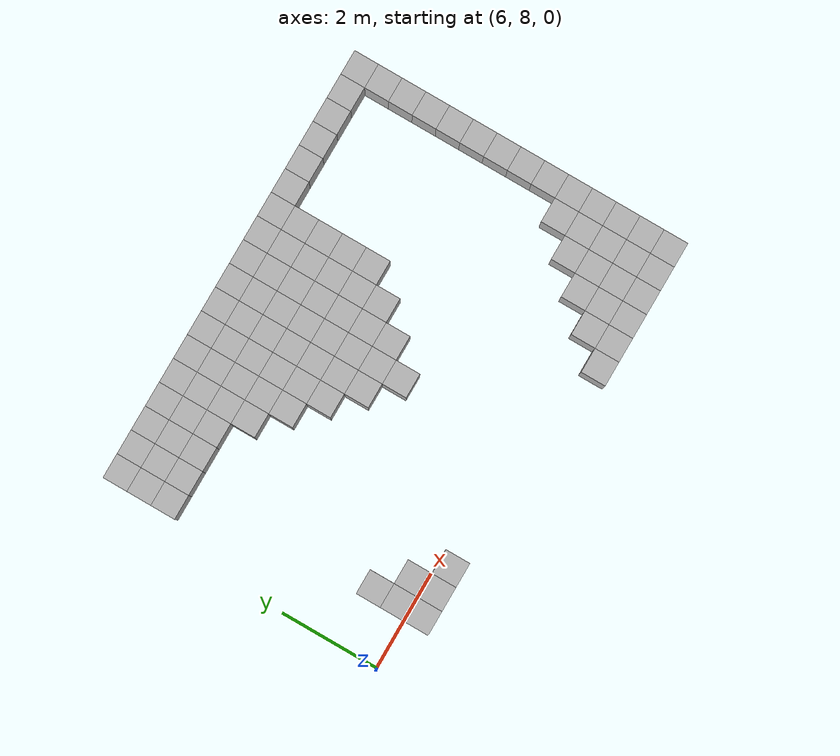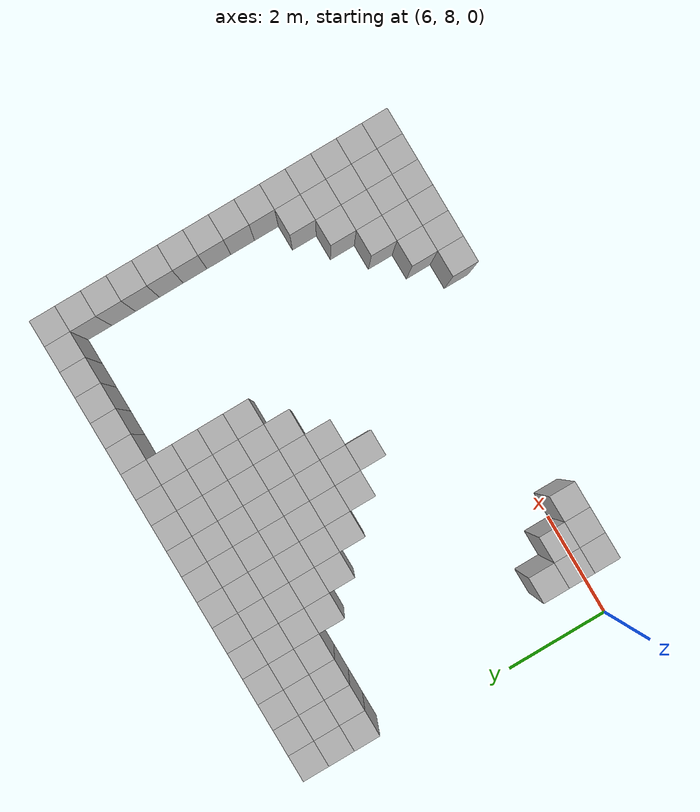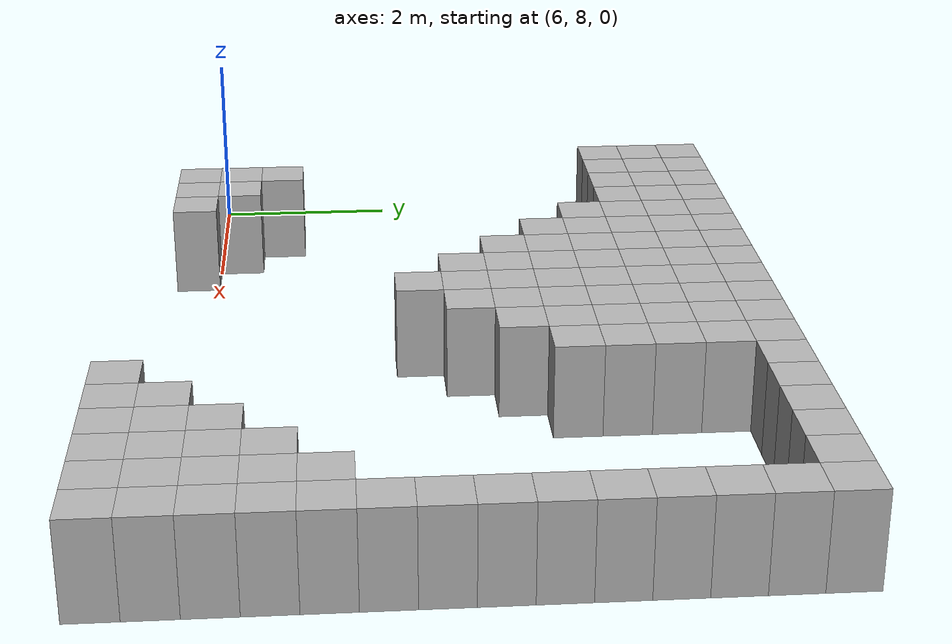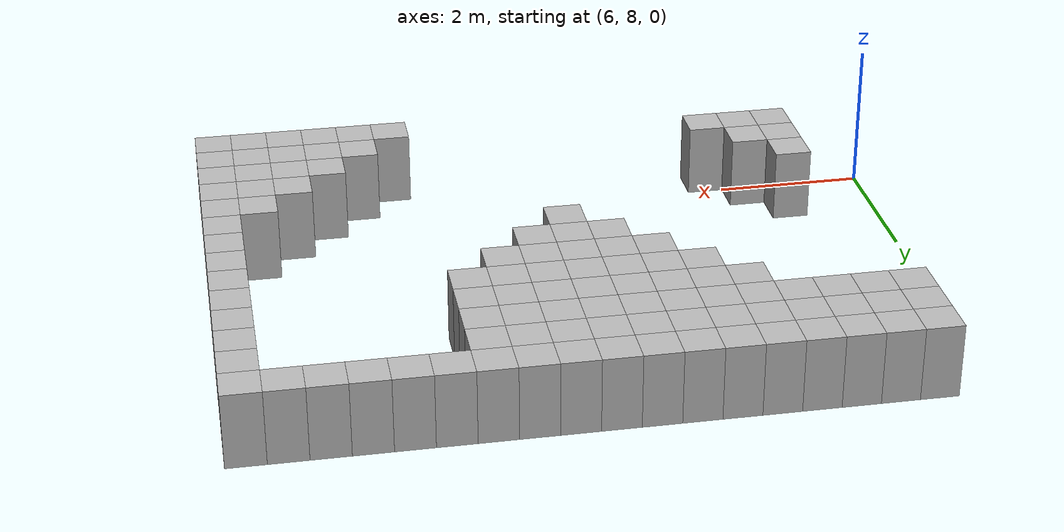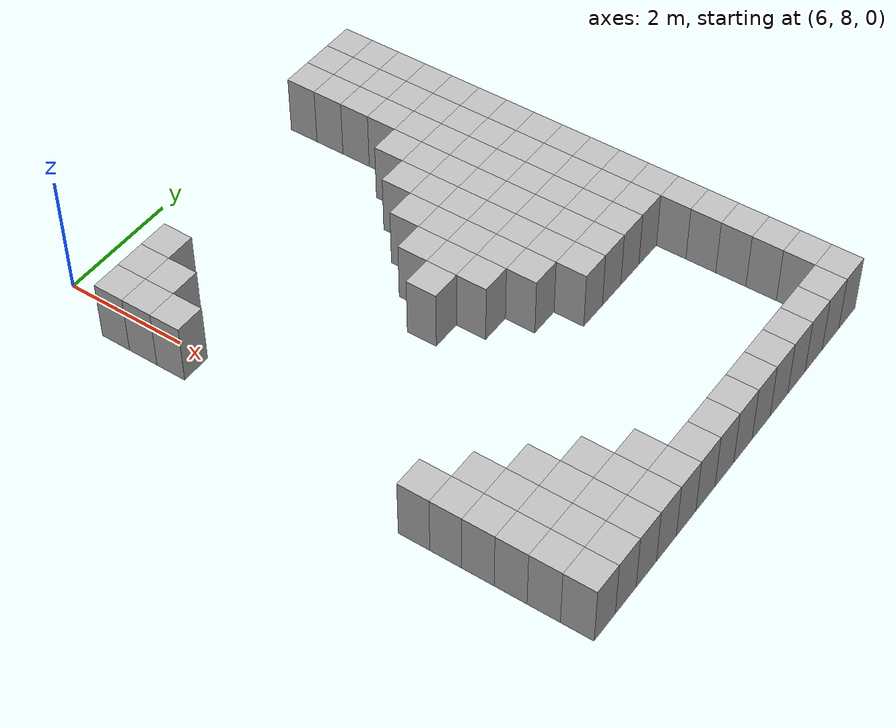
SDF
<sdf version="1.4">
 <world name="default">
  <model name="box_13_25">
   <pose>6.75 12.75 0.5 0 0 0</pose>
   <static>true</static>
   <link name="link">
    <collision name="collision"><geometry><box><size>0.5 0.5 1.0</size></box></geometry></collision>
    <visual name="visual"><geometry><box><size>0.5 0.5 1.0</size></box></geometry></visual>
   </link>
  </model>
  <model name="box_13_26">
   <pose>6.75 13.25 0.5 0 0 0</pose>
   <static>true</static>
   <link name="link">
    <collision name="collision"><geometry><box><size>0.5 0.5 1.0</size></box></geometry></collision>
    <visual name="visual"><geometry><box><size>0.5 0.5 1.0</size></box></geometry></visual>
   </link>
  </model>
  <model name="box_13_27">
   <pose>6.75 13.75 0.5 0 0 0</pose>
   <static>true</static>
   <link name="link">
    <collision name="collision"><geometry><box><size>0.5 0.5 1.0</size></box></geometry></collision>
    <visual name="visual"><geometry><box><size>0.5 0.5 1.0</size></box></geometry></visual>
   </link>
  </model>
  <model name="box_14_15">
   <pose>7.25 7.75 0.5 0 0 0</pose>
   <static>true</static>
   <link name="link">
    <collision name="collision"><geometry><box><size>0.5 0.5 1.0</size></box></geometry></collision>
    <visual name="visual"><geometry><box><size>0.5 0.5 1.0</size></box></geometry></visual>
   </link>
  </model>
  <model name="box_14_16">
   <pose>7.25 8.25 0.5 0 0 0</pose>
   <static>true</static>
   <link name="link">
    <collision name="collision"><geometry><box><size>0.5 0.5 1.0</size></box></geometry></collision>
    <visual name="visual"><geometry><box><size>0.5 0.5 1.0</size></box></geometry></visual>
   </link>
  </model>
  <model name="box_14_17">
   <pose>7.25 8.75 0.5 0 0 0</pose>
   <static>true</static>
   <link name="link">
    <collision name="collision"><geometry><box><size>0.5 0.5 1.0</size></box></geometry></collision>
    <visual name="visual"><geometry><box><size>0.5 0.5 1.0</size></box></geometry></visual>
   </link>
  </model>
  <model name="box_14_25">
   <pose>7.25 12.75 0.5 0 0 0</pose>
   <static>true</static>
   <link name="link">
    <collision name="collision"><geometry><box><size>0.5 0.5 1.0</size></box></geometry></collision>
    <visual name="visual"><geometry><box><size>0.5 0.5 1.0</size></box></geometry></visual>
   </link>
  </model>
  <model name="box_14_26">
   <pose>7.25 13.25 0.5 0 0 0</pose>
   <static>true</static>
   <link name="link">
    <collision name="collision"><geometry><box><size>0.5 0.5 1.0</size></box></geometry></collision>
    <visual name="visual"><geometry><box><size>0.5 0.5 1.0</size></box></geometry></visual>
   </link>
  </model>
  <model name="box_14_27">
   <pose>7.25 13.75 0.5 0 0 0</pose>
   <static>true</static>
   <link name="link">
    <collision name="collision"><geometry><box><size>0.5 0.5 1.0</size></box></geometry></collision>
    <visual name="visual"><geometry><box><size>0.5 0.5 1.0</size></box></geometry></visual>
   </link>
  </model>
  <model name="box_15_15">
   <pose>7.75 7.75 0.5 0 0 0</pose>
   <static>true</static>
   <link name="link">
    <collision name="collision"><geometry><box><size>0.5 0.5 1.0</size></box></geometry></collision>
    <visual name="visual"><geometry><box><size>0.5 0.5 1.0</size></box></geometry></visual>
   </link>
  </model>
  <model name="box_15_16">
   <pose>7.75 8.25 0.5 0 0 0</pose>
   <static>true</static>
   <link name="link">
    <collision name="collision"><geometry><box><size>0.5 0.5 1.0</size></box></geometry></collision>
    <visual name="visual"><geometry><box><size>0.5 0.5 1.0</size></box></geometry></visual>
   </link>
  </model>
  <model name="box_15_25">
   <pose>7.75 12.75 0.5 0 0 0</pose>
   <static>true</static>
   <link name="link">
    <collision name="collision"><geometry><box><size>0.5 0.5 1.0</size></box></geometry></collision>
    <visual name="visual"><geometry><box><size>0.5 0.5 1.0</size></box></geometry></visual>
   </link>
  </model>
  <model name="box_15_26">
   <pose>7.75 13.25 0.5 0 0 0</pose>
   <static>true</static>
   <link name="link">
    <collision name="collision"><geometry><box><size>0.5 0.5 1.0</size></box></geometry></collision>
    <visual name="visual"><geometry><box><size>0.5 0.5 1.0</size></box></geometry></visual>
   </link>
  </model>
  <model name="box_15_27">
   <pose>7.75 13.75 0.5 0 0 0</pose>
   <static>true</static>
   <link name="link">
    <collision name="collision"><geometry><box><size>0.5 0.5 1.0</size></box></geometry></collision>
    <visual name="visual"><geometry><box><size>0.5 0.5 1.0</size></box></geometry></visual>
   </link>
  </model>
  <model name="box_16_15">
   <pose>8.25 7.75 0.5 0 0 0</pose>
   <static>true</static>
   <link name="link">
    <collision name="collision"><geometry><box><size>0.5 0.5 1.0</size></box></geometry></collision>
    <visual name="visual"><geometry><box><size>0.5 0.5 1.0</size></box></geometry></visual>
   </link>
  </model>
  <model name="box_16_25">
   <pose>8.25 12.75 0.5 0 0 0</pose>
   <static>true</static>
   <link name="link">
    <collision name="collision"><geometry><box><size>0.5 0.5 1.0</size></box></geometry></collision>
    <visual name="visual"><geometry><box><size>0.5 0.5 1.0</size></box></geometry></visual>
   </link>
  </model>
  <model name="box_16_26">
   <pose>8.25 13.25 0.5 0 0 0</pose>
   <static>true</static>
   <link name="link">
    <collision name="collision"><geometry><box><size>0.5 0.5 1.0</size></box></geometry></collision>
    <visual name="visual"><geometry><box><size>0.5 0.5 1.0</size></box></geometry></visual>
   </link>
  </model>
  <model name="box_16_27">
   <pose>8.25 13.75 0.5 0 0 0</pose>
   <static>true</static>
   <link name="link">
    <collision name="collision"><geometry><box><size>0.5 0.5 1.0</size></box></geometry></collision>
    <visual name="visual"><geometry><box><size>0.5 0.5 1.0</size></box></geometry></visual>
   </link>
  </model>
  <model name="box_17_24">
   <pose>8.75 12.25 0.5 0 0 0</pose>
   <static>true</static>
   <link name="link">
    <collision name="collision"><geometry><box><size>0.5 0.5 1.0</size></box></geometry></collision>
    <visual name="visual"><geometry><box><size>0.5 0.5 1.0</size></box></geometry></visual>
   </link>
  </model>
  <model name="box_17_25">
   <pose>8.75 12.75 0.5 0 0 0</pose>
   <static>true</static>
   <link name="link">
    <collision name="collision"><geometry><box><size>0.5 0.5 1.0</size></box></geometry></collision>
    <visual name="visual"><geometry><box><size>0.5 0.5 1.0</size></box></geometry></visual>
   </link>
  </model>
  <model name="box_17_26">
   <pose>8.75 13.25 0.5 0 0 0</pose>
   <static>true</static>
   <link name="link">
    <collision name="collision"><geometry><box><size>0.5 0.5 1.0</size></box></geometry></collision>
    <visual name="visual"><geometry><box><size>0.5 0.5 1.0</size></box></geometry></visual>
   </link>
  </model>
  <model name="box_17_27">
   <pose>8.75 13.75 0.5 0 0 0</pose>
   <static>true</static>
   <link name="link">
    <collision name="collision"><geometry><box><size>0.5 0.5 1.0</size></box></geometry></collision>
    <visual name="visual"><geometry><box><size>0.5 0.5 1.0</size></box></geometry></visual>
   </link>
  </model>
  <model name="box_18_23">
   <pose>9.25 11.75 0.5 0 0 0</pose>
   <static>true</static>
   <link name="link">
    <collision name="collision"><geometry><box><size>0.5 0.5 1.0</size></box></geometry></collision>
    <visual name="visual"><geometry><box><size>0.5 0.5 1.0</size></box></geometry></visual>
   </link>
  </model>
  <model name="box_18_24">
   <pose>9.25 12.25 0.5 0 0 0</pose>
   <static>true</static>
   <link name="link">
    <collision name="collision"><geometry><box><size>0.5 0.5 1.0</size></box></geometry></collision>
    <visual name="visual"><geometry><box><size>0.5 0.5 1.0</size></box></geometry></visual>
   </link>
  </model>
  <model name="box_18_25">
   <pose>9.25 12.75 0.5 0 0 0</pose>
   <static>true</static>
   <link name="link">
    <collision name="collision"><geometry><box><size>0.5 0.5 1.0</size></box></geometry></collision>
    <visual name="visual"><geometry><box><size>0.5 0.5 1.0</size></box></geometry></visual>
   </link>
  </model>
  <model name="box_18_26">
   <pose>9.25 13.25 0.5 0 0 0</pose>
   <static>true</static>
   <link name="link">
    <collision name="collision"><geometry><box><size>0.5 0.5 1.0</size></box></geometry></collision>
    <visual name="visual"><geometry><box><size>0.5 0.5 1.0</size></box></geometry></visual>
   </link>
  </model>
  <model name="box_18_27">
   <pose>9.25 13.75 0.5 0 0 0</pose>
   <static>true</static>
   <link name="link">
    <collision name="collision"><geometry><box><size>0.5 0.5 1.0</size></box></geometry></collision>
    <visual name="visual"><geometry><box><size>0.5 0.5 1.0</size></box></geometry></visual>
   </link>
  </model>
  <model name="box_19_22">
   <pose>9.75 11.25 0.5 0 0 0</pose>
   <static>true</static>
   <link name="link">
    <collision name="collision"><geometry><box><size>0.5 0.5 1.0</size></box></geometry></collision>
    <visual name="visual"><geometry><box><size>0.5 0.5 1.0</size></box></geometry></visual>
   </link>
  </model>
  <model name="box_19_23">
   <pose>9.75 11.75 0.5 0 0 0</pose>
   <static>true</static>
   <link name="link">
    <collision name="collision"><geometry><box><size>0.5 0.5 1.0</size></box></geometry></collision>
    <visual name="visual"><geometry><box><size>0.5 0.5 1.0</size></box></geometry></visual>
   </link>
  </model>
  <model name="box_19_24">
   <pose>9.75 12.25 0.5 0 0 0</pose>
   <static>true</static>
   <link name="link">
    <collision name="collision"><geometry><box><size>0.5 0.5 1.0</size></box></geometry></collision>
    <visual name="visual"><geometry><box><size>0.5 0.5 1.0</size></box></geometry></visual>
   </link>
  </model>
  <model name="box_19_25">
   <pose>9.75 12.75 0.5 0 0 0</pose>
   <static>true</static>
   <link name="link">
    <collision name="collision"><geometry><box><size>0.5 0.5 1.0</size></box></geometry></collision>
    <visual name="visual"><geometry><box><size>0.5 0.5 1.0</size></box></geometry></visual>
   </link>
  </model>
  <model name="box_19_26">
   <pose>9.75 13.25 0.5 0 0 0</pose>
   <static>true</static>
   <link name="link">
    <collision name="collision"><geometry><box><size>0.5 0.5 1.0</size></box></geometry></collision>
    <visual name="visual"><geometry><box><size>0.5 0.5 1.0</size></box></geometry></visual>
   </link>
  </model>
  <model name="box_19_27">
   <pose>9.75 13.75 0.5 0 0 0</pose>
   <static>true</static>
   <link name="link">
    <collision name="collision"><geometry><box><size>0.5 0.5 1.0</size></box></geometry></collision>
    <visual name="visual"><geometry><box><size>0.5 0.5 1.0</size></box></geometry></visual>
   </link>
  </model>
  <model name="box_20_21">
   <pose>10.25 10.75 0.5 0 0 0</pose>
   <static>true</static>
   <link name="link">
    <collision name="collision"><geometry><box><size>0.5 0.5 1.0</size></box></geometry></collision>
    <visual name="visual"><geometry><box><size>0.5 0.5 1.0</size></box></geometry></visual>
   </link>
  </model>
  <model name="box_20_22">
   <pose>10.25 11.25 0.5 0 0 0</pose>
   <static>true</static>
   <link name="link">
    <collision name="collision"><geometry><box><size>0.5 0.5 1.0</size></box></geometry></collision>
    <visual name="visual"><geometry><box><size>0.5 0.5 1.0</size></box></geometry></visual>
   </link>
  </model>
  <model name="box_20_23">
   <pose>10.25 11.75 0.5 0 0 0</pose>
   <static>true</static>
   <link name="link">
    <collision name="collision"><geometry><box><size>0.5 0.5 1.0</size></box></geometry></collision>
    <visual name="visual"><geometry><box><size>0.5 0.5 1.0</size></box></geometry></visual>
   </link>
  </model>
  <model name="box_20_24">
   <pose>10.25 12.25 0.5 0 0 0</pose>
   <static>true</static>
   <link name="link">
    <collision name="collision"><geometry><box><size>0.5 0.5 1.0</size></box></geometry></collision>
    <visual name="visual"><geometry><box><size>0.5 0.5 1.0</size></box></geometry></visual>
   </link>
  </model>
  <model name="box_20_25">
   <pose>10.25 12.75 0.5 0 0 0</pose>
   <static>true</static>
   <link name="link">
    <collision name="collision"><geometry><box><size>0.5 0.5 1.0</size></box></geometry></collision>
    <visual name="visual"><geometry><box><size>0.5 0.5 1.0</size></box></geometry></visual>
   </link>
  </model>
  <model name="box_20_26">
   <pose>10.25 13.25 0.5 0 0 0</pose>
   <static>true</static>
   <link name="link">
    <collision name="collision"><geometry><box><size>0.5 0.5 1.0</size></box></geometry></collision>
    <visual name="visual"><geometry><box><size>0.5 0.5 1.0</size></box></geometry></visual>
   </link>
  </model>
  <model name="box_20_27">
   <pose>10.25 13.75 0.5 0 0 0</pose>
   <static>true</static>
   <link name="link">
    <collision name="collision"><geometry><box><size>0.5 0.5 1.0</size></box></geometry></collision>
    <visual name="visual"><geometry><box><size>0.5 0.5 1.0</size></box></geometry></visual>
   </link>
  </model>
  <model name="box_21_20">
   <pose>10.75 10.25 0.5 0 0 0</pose>
   <static>true</static>
   <link name="link">
    <collision name="collision"><geometry><box><size>0.5 0.5 1.0</size></box></geometry></collision>
    <visual name="visual"><geometry><box><size>0.5 0.5 1.0</size></box></geometry></visual>
   </link>
  </model>
  <model name="box_21_21">
   <pose>10.75 10.75 0.5 0 0 0</pose>
   <static>true</static>
   <link name="link">
    <collision name="collision"><geometry><box><size>0.5 0.5 1.0</size></box></geometry></collision>
    <visual name="visual"><geometry><box><size>0.5 0.5 1.0</size></box></geometry></visual>
   </link>
  </model>
  <model name="box_21_22">
   <pose>10.75 11.25 0.5 0 0 0</pose>
   <static>true</static>
   <link name="link">
    <collision name="collision"><geometry><box><size>0.5 0.5 1.0</size></box></geometry></collision>
    <visual name="visual"><geometry><box><size>0.5 0.5 1.0</size></box></geometry></visual>
   </link>
  </model>
  <model name="box_21_23">
   <pose>10.75 11.75 0.5 0 0 0</pose>
   <static>true</static>
   <link name="link">
    <collision name="collision"><geometry><box><size>0.5 0.5 1.0</size></box></geometry></collision>
    <visual name="visual"><geometry><box><size>0.5 0.5 1.0</size></box></geometry></visual>
   </link>
  </model>
  <model name="box_21_24">
   <pose>10.75 12.25 0.5 0 0 0</pose>
   <static>true</static>
   <link name="link">
    <collision name="collision"><geometry><box><size>0.5 0.5 1.0</size></box></geometry></collision>
    <visual name="visual"><geometry><box><size>0.5 0.5 1.0</size></box></geometry></visual>
   </link>
  </model>
  <model name="box_21_25">
   <pose>10.75 12.75 0.5 0 0 0</pose>
   <static>true</static>
   <link name="link">
    <collision name="collision"><geometry><box><size>0.5 0.5 1.0</size></box></geometry></collision>
    <visual name="visual"><geometry><box><size>0.5 0.5 1.0</size></box></geometry></visual>
   </link>
  </model>
  <model name="box_21_26">
   <pose>10.75 13.25 0.5 0 0 0</pose>
   <static>true</static>
   <link name="link">
    <collision name="collision"><geometry><box><size>0.5 0.5 1.0</size></box></geometry></collision>
    <visual name="visual"><geometry><box><size>0.5 0.5 1.0</size></box></geometry></visual>
   </link>
  </model>
  <model name="box_21_27">
   <pose>10.75 13.75 0.5 0 0 0</pose>
   <static>true</static>
   <link name="link">
    <collision name="collision"><geometry><box><size>0.5 0.5 1.0</size></box></geometry></collision>
    <visual name="visual"><geometry><box><size>0.5 0.5 1.0</size></box></geometry></visual>
   </link>
  </model>
  <model name="box_22_21">
   <pose>11.25 10.75 0.5 0 0 0</pose>
   <static>true</static>
   <link name="link">
    <collision name="collision"><geometry><box><size>0.5 0.5 1.0</size></box></geometry></collision>
    <visual name="visual"><geometry><box><size>0.5 0.5 1.0</size></box></geometry></visual>
   </link>
  </model>
  <model name="box_22_22">
   <pose>11.25 11.25 0.5 0 0 0</pose>
   <static>true</static>
   <link name="link">
    <collision name="collision"><geometry><box><size>0.5 0.5 1.0</size></box></geometry></collision>
    <visual name="visual"><geometry><box><size>0.5 0.5 1.0</size></box></geometry></visual>
   </link>
  </model>
  <model name="box_22_23">
   <pose>11.25 11.75 0.5 0 0 0</pose>
   <static>true</static>
   <link name="link">
    <collision name="collision"><geometry><box><size>0.5 0.5 1.0</size></box></geometry></collision>
    <visual name="visual"><geometry><box><size>0.5 0.5 1.0</size></box></geometry></visual>
   </link>
  </model>
  <model name="box_22_24">
   <pose>11.25 12.25 0.5 0 0 0</pose>
   <static>true</static>
   <link name="link">
    <collision name="collision"><geometry><box><size>0.5 0.5 1.0</size></box></geometry></collision>
    <visual name="visual"><geometry><box><size>0.5 0.5 1.0</size></box></geometry></visual>
   </link>
  </model>
  <model name="box_22_25">
   <pose>11.25 12.75 0.5 0 0 0</pose>
   <static>true</static>
   <link name="link">
    <collision name="collision"><geometry><box><size>0.5 0.5 1.0</size></box></geometry></collision>
    <visual name="visual"><geometry><box><size>0.5 0.5 1.0</size></box></geometry></visual>
   </link>
  </model>
  <model name="box_22_26">
   <pose>11.25 13.25 0.5 0 0 0</pose>
   <static>true</static>
   <link name="link">
    <collision name="collision"><geometry><box><size>0.5 0.5 1.0</size></box></geometry></collision>
    <visual name="visual"><geometry><box><size>0.5 0.5 1.0</size></box></geometry></visual>
   </link>
  </model>
  <model name="box_22_27">
   <pose>11.25 13.75 0.5 0 0 0</pose>
   <static>true</static>
   <link name="link">
    <collision name="collision"><geometry><box><size>0.5 0.5 1.0</size></box></geometry></collision>
    <visual name="visual"><geometry><box><size>0.5 0.5 1.0</size></box></geometry></visual>
   </link>
  </model>
  <model name="box_23_22">
   <pose>11.75 11.25 0.5 0 0 0</pose>
   <static>true</static>
   <link name="link">
    <collision name="collision"><geometry><box><size>0.5 0.5 1.0</size></box></geometry></collision>
    <visual name="visual"><geometry><box><size>0.5 0.5 1.0</size></box></geometry></visual>
   </link>
  </model>
  <model name="box_23_23">
   <pose>11.75 11.75 0.5 0 0 0</pose>
   <static>true</static>
   <link name="link">
    <collision name="collision"><geometry><box><size>0.5 0.5 1.0</size></box></geometry></collision>
    <visual name="visual"><geometry><box><size>0.5 0.5 1.0</size></box></geometry></visual>
   </link>
  </model>
  <model name="box_23_24">
   <pose>11.75 12.25 0.5 0 0 0</pose>
   <static>true</static>
   <link name="link">
    <collision name="collision"><geometry><box><size>0.5 0.5 1.0</size></box></geometry></collision>
    <visual name="visual"><geometry><box><size>0.5 0.5 1.0</size></box></geometry></visual>
   </link>
  </model>
  <model name="box_23_25">
   <pose>11.75 12.75 0.5 0 0 0</pose>
   <static>true</static>
   <link name="link">
    <collision name="collision"><geometry><box><size>0.5 0.5 1.0</size></box></geometry></collision>
    <visual name="visual"><geometry><box><size>0.5 0.5 1.0</size></box></geometry></visual>
   </link>
  </model>
  <model name="box_23_26">
   <pose>11.75 13.25 0.5 0 0 0</pose>
   <static>true</static>
   <link name="link">
    <collision name="collision"><geometry><box><size>0.5 0.5 1.0</size></box></geometry></collision>
    <visual name="visual"><geometry><box><size>0.5 0.5 1.0</size></box></geometry></visual>
   </link>
  </model>
  <model name="box_23_27">
   <pose>11.75 13.75 0.5 0 0 0</pose>
   <static>true</static>
   <link name="link">
    <collision name="collision"><geometry><box><size>0.5 0.5 1.0</size></box></geometry></collision>
    <visual name="visual"><geometry><box><size>0.5 0.5 1.0</size></box></geometry></visual>
   </link>
  </model>
  <model name="box_24_23">
   <pose>12.25 11.75 0.5 0 0 0</pose>
   <static>true</static>
   <link name="link">
    <collision name="collision"><geometry><box><size>0.5 0.5 1.0</size></box></geometry></collision>
    <visual name="visual"><geometry><box><size>0.5 0.5 1.0</size></box></geometry></visual>
   </link>
  </model>
  <model name="box_24_24">
   <pose>12.25 12.25 0.5 0 0 0</pose>
   <static>true</static>
   <link name="link">
    <collision name="collision"><geometry><box><size>0.5 0.5 1.0</size></box></geometry></collision>
    <visual name="visual"><geometry><box><size>0.5 0.5 1.0</size></box></geometry></visual>
   </link>
  </model>
  <model name="box_24_25">
   <pose>12.25 12.75 0.5 0 0 0</pose>
   <static>true</static>
   <link name="link">
    <collision name="collision"><geometry><box><size>0.5 0.5 1.0</size></box></geometry></collision>
    <visual name="visual"><geometry><box><size>0.5 0.5 1.0</size></box></geometry></visual>
   </link>
  </model>
  <model name="box_24_26">
   <pose>12.25 13.25 0.5 0 0 0</pose>
   <static>true</static>
   <link name="link">
    <collision name="collision"><geometry><box><size>0.5 0.5 1.0</size></box></geometry></collision>
    <visual name="visual"><geometry><box><size>0.5 0.5 1.0</size></box></geometry></visual>
   </link>
  </model>
  <model name="box_24_27">
   <pose>12.25 13.75 0.5 0 0 0</pose>
   <static>true</static>
   <link name="link">
    <collision name="collision"><geometry><box><size>0.5 0.5 1.0</size></box></geometry></collision>
    <visual name="visual"><geometry><box><size>0.5 0.5 1.0</size></box></geometry></visual>
   </link>
  </model>
  <model name="box_25_14">
   <pose>12.75 7.25 0.5 0 0 0</pose>
   <static>true</static>
   <link name="link">
    <collision name="collision"><geometry><box><size>0.5 0.5 1.0</size></box></geometry></collision>
    <visual name="visual"><geometry><box><size>0.5 0.5 1.0</size></box></geometry></visual>
   </link>
  </model>
  <model name="box_25_27">
   <pose>12.75 13.75 0.5 0 0 0</pose>
   <static>true</static>
   <link name="link">
    <collision name="collision"><geometry><box><size>0.5 0.5 1.0</size></box></geometry></collision>
    <visual name="visual"><geometry><box><size>0.5 0.5 1.0</size></box></geometry></visual>
   </link>
  </model>
  <model name="box_26_14">
   <pose>13.25 7.25 0.5 0 0 0</pose>
   <static>true</static>
   <link name="link">
    <collision name="collision"><geometry><box><size>0.5 0.5 1.0</size></box></geometry></collision>
    <visual name="visual"><geometry><box><size>0.5 0.5 1.0</size></box></geometry></visual>
   </link>
  </model>
  <model name="box_26_15">
   <pose>13.25 7.75 0.5 0 0 0</pose>
   <static>true</static>
   <link name="link">
    <collision name="collision"><geometry><box><size>0.5 0.5 1.0</size></box></geometry></collision>
    <visual name="visual"><geometry><box><size>0.5 0.5 1.0</size></box></geometry></visual>
   </link>
  </model>
  <model name="box_26_27">
   <pose>13.25 13.75 0.5 0 0 0</pose>
   <static>true</static>
   <link name="link">
    <collision name="collision"><geometry><box><size>0.5 0.5 1.0</size></box></geometry></collision>
    <visual name="visual"><geometry><box><size>0.5 0.5 1.0</size></box></geometry></visual>
   </link>
  </model>
  <model name="box_27_14">
   <pose>13.75 7.25 0.5 0 0 0</pose>
   <static>true</static>
   <link name="link">
    <collision name="collision"><geometry><box><size>0.5 0.5 1.0</size></box></geometry></collision>
    <visual name="visual"><geometry><box><size>0.5 0.5 1.0</size></box></geometry></visual>
   </link>
  </model>
  <model name="box_27_15">
   <pose>13.75 7.75 0.5 0 0 0</pose>
   <static>true</static>
   <link name="link">
    <collision name="collision"><geometry><box><size>0.5 0.5 1.0</size></box></geometry></collision>
    <visual name="visual"><geometry><box><size>0.5 0.5 1.0</size></box></geometry></visual>
   </link>
  </model>
  <model name="box_27_16">
   <pose>13.75 8.25 0.5 0 0 0</pose>
   <static>true</static>
   <link name="link">
    <collision name="collision"><geometry><box><size>0.5 0.5 1.0</size></box></geometry></collision>
    <visual name="visual"><geometry><box><size>0.5 0.5 1.0</size></box></geometry></visual>
   </link>
  </model>
  <model name="box_27_27">
   <pose>13.75 13.75 0.5 0 0 0</pose>
   <static>true</static>
   <link name="link">
    <collision name="collision"><geometry><box><size>0.5 0.5 1.0</size></box></geometry></collision>
    <visual name="visual"><geometry><box><size>0.5 0.5 1.0</size></box></geometry></visual>
   </link>
  </model>
  <model name="box_28_14">
   <pose>14.25 7.25 0.5 0 0 0</pose>
   <static>true</static>
   <link name="link">
    <collision name="collision"><geometry><box><size>0.5 0.5 1.0</size></box></geometry></collision>
    <visual name="visual"><geometry><box><size>0.5 0.5 1.0</size></box></geometry></visual>
   </link>
  </model>
  <model name="box_28_15">
   <pose>14.25 7.75 0.5 0 0 0</pose>
   <static>true</static>
   <link name="link">
    <collision name="collision"><geometry><box><size>0.5 0.5 1.0</size></box></geometry></collision>
    <visual name="visual"><geometry><box><size>0.5 0.5 1.0</size></box></geometry></visual>
   </link>
  </model>
  <model name="box_28_16">
   <pose>14.25 8.25 0.5 0 0 0</pose>
   <static>true</static>
   <link name="link">
    <collision name="collision"><geometry><box><size>0.5 0.5 1.0</size></box></geometry></collision>
    <visual name="visual"><geometry><box><size>0.5 0.5 1.0</size></box></geometry></visual>
   </link>
  </model>
  <model name="box_28_17">
   <pose>14.25 8.75 0.5 0 0 0</pose>
   <static>true</static>
   <link name="link">
    <collision name="collision"><geometry><box><size>0.5 0.5 1.0</size></box></geometry></collision>
    <visual name="visual"><geometry><box><size>0.5 0.5 1.0</size></box></geometry></visual>
   </link>
  </model>
  <model name="box_28_27">
   <pose>14.25 13.75 0.5 0 0 0</pose>
   <static>true</static>
   <link name="link">
    <collision name="collision"><geometry><box><size>0.5 0.5 1.0</size></box></geometry></collision>
    <visual name="visual"><geometry><box><size>0.5 0.5 1.0</size></box></geometry></visual>
   </link>
  </model>
  <model name="box_29_14">
   <pose>14.75 7.25 0.5 0 0 0</pose>
   <static>true</static>
   <link name="link">
    <collision name="collision"><geometry><box><size>0.5 0.5 1.0</size></box></geometry></collision>
    <visual name="visual"><geometry><box><size>0.5 0.5 1.0</size></box></geometry></visual>
   </link>
  </model>
  <model name="box_29_15">
   <pose>14.75 7.75 0.5 0 0 0</pose>
   <static>true</static>
   <link name="link">
    <collision name="collision"><geometry><box><size>0.5 0.5 1.0</size></box></geometry></collision>
    <visual name="visual"><geometry><box><size>0.5 0.5 1.0</size></box></geometry></visual>
   </link>
  </model>
  <model name="box_29_16">
   <pose>14.75 8.25 0.5 0 0 0</pose>
   <static>true</static>
   <link name="link">
    <collision name="collision"><geometry><box><size>0.5 0.5 1.0</size></box></geometry></collision>
    <visual name="visual"><geometry><box><size>0.5 0.5 1.0</size></box></geometry></visual>
   </link>
  </model>
  <model name="box_29_17">
   <pose>14.75 8.75 0.5 0 0 0</pose>
   <static>true</static>
   <link name="link">
    <collision name="collision"><geometry><box><size>0.5 0.5 1.0</size></box></geometry></collision>
    <visual name="visual"><geometry><box><size>0.5 0.5 1.0</size></box></geometry></visual>
   </link>
  </model>
  <model name="box_29_18">
   <pose>14.75 9.25 0.5 0 0 0</pose>
   <static>true</static>
   <link name="link">
    <collision name="collision"><geometry><box><size>0.5 0.5 1.0</size></box></geometry></collision>
    <visual name="visual"><geometry><box><size>0.5 0.5 1.0</size></box></geometry></visual>
   </link>
  </model>
  <model name="box_29_27">
   <pose>14.75 13.75 0.5 0 0 0</pose>
   <static>true</static>
   <link name="link">
    <collision name="collision"><geometry><box><size>0.5 0.5 1.0</size></box></geometry></collision>
    <visual name="visual"><geometry><box><size>0.5 0.5 1.0</size></box></geometry></visual>
   </link>
  </model>
  <model name="box_30_14">
   <pose>15.25 7.25 0.5 0 0 0</pose>
   <static>true</static>
   <link name="link">
    <collision name="collision"><geometry><box><size>0.5 0.5 1.0</size></box></geometry></collision>
    <visual name="visual"><geometry><box><size>0.5 0.5 1.0</size></box></geometry></visual>
   </link>
  </model>
  <model name="box_30_15">
   <pose>15.25 7.75 0.5 0 0 0</pose>
   <static>true</static>
   <link name="link">
    <collision name="collision"><geometry><box><size>0.5 0.5 1.0</size></box></geometry></collision>
    <visual name="visual"><geometry><box><size>0.5 0.5 1.0</size></box></geometry></visual>
   </link>
  </model>
  <model name="box_30_16">
   <pose>15.25 8.25 0.5 0 0 0</pose>
   <static>true</static>
   <link name="link">
    <collision name="collision"><geometry><box><size>0.5 0.5 1.0</size></box></geometry></collision>
    <visual name="visual"><geometry><box><size>0.5 0.5 1.0</size></box></geometry></visual>
   </link>
  </model>
  <model name="box_30_17">
   <pose>15.25 8.75 0.5 0 0 0</pose>
   <static>true</static>
   <link name="link">
    <collision name="collision"><geometry><box><size>0.5 0.5 1.0</size></box></geometry></collision>
    <visual name="visual"><geometry><box><size>0.5 0.5 1.0</size></box></geometry></visual>
   </link>
  </model>
  <model name="box_30_18">
   <pose>15.25 9.25 0.5 0 0 0</pose>
   <static>true</static>
   <link name="link">
    <collision name="collision"><geometry><box><size>0.5 0.5 1.0</size></box></geometry></collision>
    <visual name="visual"><geometry><box><size>0.5 0.5 1.0</size></box></geometry></visual>
   </link>
  </model>
  <model name="box_30_19">
   <pose>15.25 9.75 0.5 0 0 0</pose>
   <static>true</static>
   <link name="link">
    <collision name="collision"><geometry><box><size>0.5 0.5 1.0</size></box></geometry></collision>
    <visual name="visual"><geometry><box><size>0.5 0.5 1.0</size></box></geometry></visual>
   </link>
  </model>
  <model name="box_30_20">
   <pose>15.25 10.25 0.5 0 0 0</pose>
   <static>true</static>
   <link name="link">
    <collision name="collision"><geometry><box><size>0.5 0.5 1.0</size></box></geometry></collision>
    <visual name="visual"><geometry><box><size>0.5 0.5 1.0</size></box></geometry></visual>
   </link>
  </model>
  <model name="box_30_21">
   <pose>15.25 10.75 0.5 0 0 0</pose>
   <static>true</static>
   <link name="link">
    <collision name="collision"><geometry><box><size>0.5 0.5 1.0</size></box></geometry></collision>
    <visual name="visual"><geometry><box><size>0.5 0.5 1.0</size></box></geometry></visual>
   </link>
  </model>
  <model name="box_30_22">
   <pose>15.25 11.25 0.5 0 0 0</pose>
   <static>true</static>
   <link name="link">
    <collision name="collision"><geometry><box><size>0.5 0.5 1.0</size></box></geometry></collision>
    <visual name="visual"><geometry><box><size>0.5 0.5 1.0</size></box></geometry></visual>
   </link>
  </model>
  <model name="box_30_23">
   <pose>15.25 11.75 0.5 0 0 0</pose>
   <static>true</static>
   <link name="link">
    <collision name="collision"><geometry><box><size>0.5 0.5 1.0</size></box></geometry></collision>
    <visual name="visual"><geometry><box><size>0.5 0.5 1.0</size></box></geometry></visual>
   </link>
  </model>
  <model name="box_30_24">
   <pose>15.25 12.25 0.5 0 0 0</pose>
   <static>true</static>
   <link name="link">
    <collision name="collision"><geometry><box><size>0.5 0.5 1.0</size></box></geometry></collision>
    <visual name="visual"><geometry><box><size>0.5 0.5 1.0</size></box></geometry></visual>
   </link>
  </model>
  <model name="box_30_25">
   <pose>15.25 12.75 0.5 0 0 0</pose>
   <static>true</static>
   <link name="link">
    <collision name="collision"><geometry><box><size>0.5 0.5 1.0</size></box></geometry></collision>
    <visual name="visual"><geometry><box><size>0.5 0.5 1.0</size></box></geometry></visual>
   </link>
  </model>
  <model name="box_30_26">
   <pose>15.25 13.25 0.5 0 0 0</pose>
   <static>true</static>
   <link name="link">
    <collision name="collision"><geometry><box><size>0.5 0.5 1.0</size></box></geometry></collision>
    <visual name="visual"><geometry><box><size>0.5 0.5 1.0</size></box></geometry></visual>
   </link>
  </model>
  <model name="box_30_27">
   <pose>15.25 13.75 0.5 0 0 0</pose>
   <static>true</static>
   <link name="link">
    <collision name="collision"><geometry><box><size>0.5 0.5 1.0</size></box></geometry></collision>
    <visual name="visual"><geometry><box><size>0.5 0.5 1.0</size></box></geometry></visual>
   </link>
  </model>
 </world>
</sdf>
